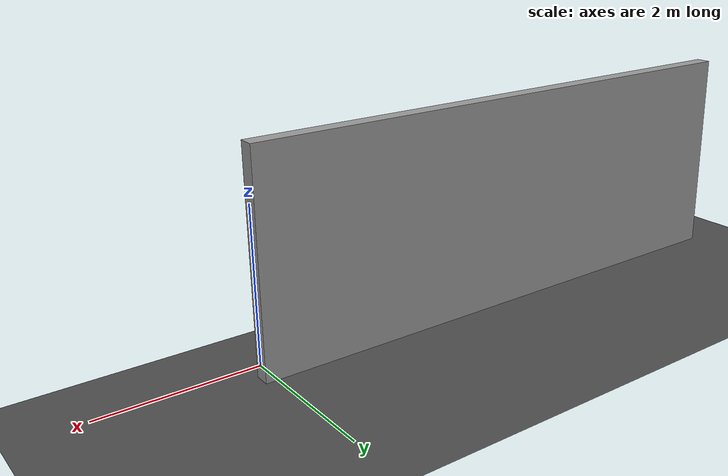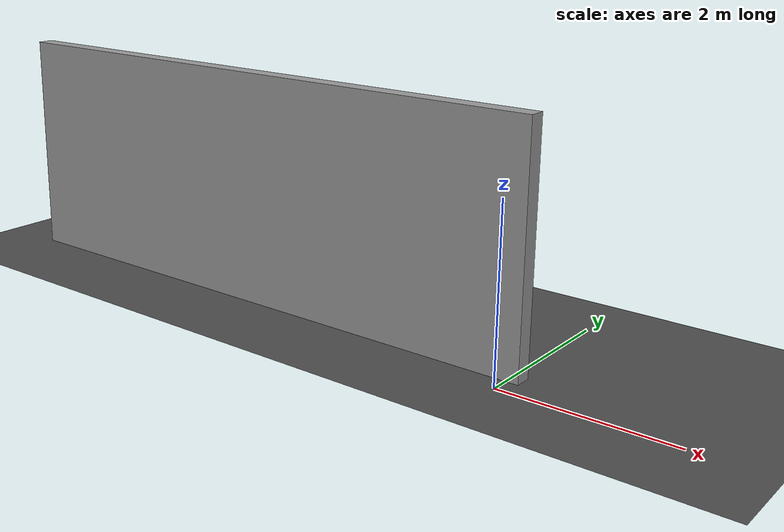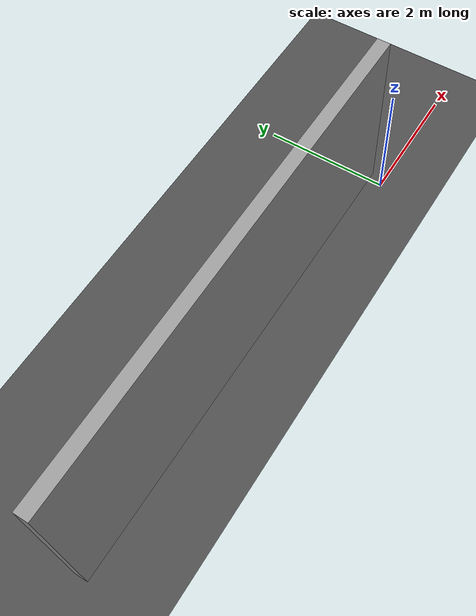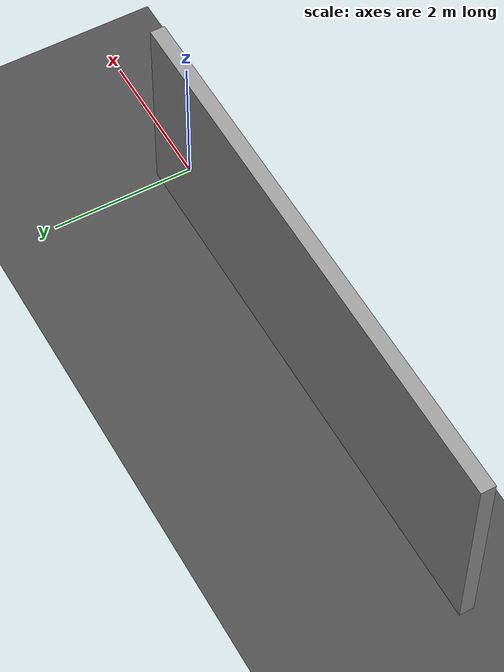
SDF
<?xml version="1.0" ?>
<sdf version='1.7'>
  <world name='default'>
    <gravity>0.0 0.0 -9.8</gravity>

    <scene>
        <grid>false</grid>
    </scene>

    <model name="grey_wall">
        <include>
            <uri>model://grey_wall</uri>
        </include>
        <pose frame="">-3.6 0.315 0 0 0 0</pose>
	</model>

    <light name='sun' type='directional'>
      <cast_shadows>1</cast_shadows>
      <pose>0 0 10 0 -0 0</pose>
      <diffuse>0.8 0.8 0.8 1</diffuse>
      <specular>0.2 0.2 0.2 1</specular>
      <attenuation>
        <range>1000</range>
        <constant>0.9</constant>
        <linear>0.01</linear>
        <quadratic>0.001</quadratic>
      </attenuation>
      <direction>-0.5 0.1 -0.9</direction>
      <spot>
        <inner_angle>0</inner_angle>
        <outer_angle>0</outer_angle>
        <falloff>0</falloff>
      </spot>
    </light>

    <model name='ground_plane'>
      <static>1</static>
      <link name='link'>
        <collision name='collision'>
          <geometry>
            <plane>
              <normal>0 0 1</normal>
              <size>100 100</size>
            </plane>
          </geometry>
          <surface>
            <friction>
              <ode>
                <mu>100</mu>
                <mu2>50</mu2>
              </ode>
              <torsional>
                <ode/>
              </torsional>
            </friction>
            <contact>
              <ode/>
            </contact>
            <bounce/>
          </surface>
          <max_contacts>10</max_contacts>
        </collision>
        <visual name='visual'>
          <cast_shadows>0</cast_shadows>
          <geometry>
            <plane>
              <normal>0 0 1</normal>
              <size>100 100</size>
            </plane>
          </geometry>
          <material>
            <script>
              <uri>file://media/materials/scripts/gazebo.material</uri>
              <name>Gazebo/DarkGrey</name>
            </script>
          </material>
        </visual>
        <self_collide>0</self_collide>
        <enable_wind>0</enable_wind>
        <kinematic>0</kinematic>
      </link>
    </model>

  </world>
</sdf>

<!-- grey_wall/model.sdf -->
<sdf version="1.5">
  <model name="grey_wall">
    <static>true</static>
    <link name="link">
      <pose>0 0 1.4 0 0 0</pose>
      <collision name="collision">
        <geometry>
          <box>
            <size>7.5 0.2 2.8</size>
          </box>
        </geometry>
      </collision>
      <visual name="visual">
        <cast_shadows>false</cast_shadows>
        <geometry>
          <box>
            <size>7.5 0.2 2.8</size>
          </box>
        </geometry>
        <material>
          <script>
            <uri>model://grey_wall/materials/scripts</uri>
            <uri>model://grey_wall/materials/textures</uri>
            <name>vrc/grey_wall</name>
          </script>
        </material>
      </visual>
    </link>
  </model>
</sdf>
